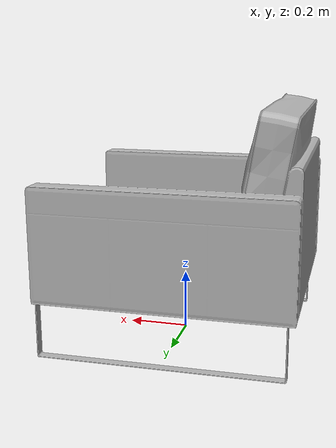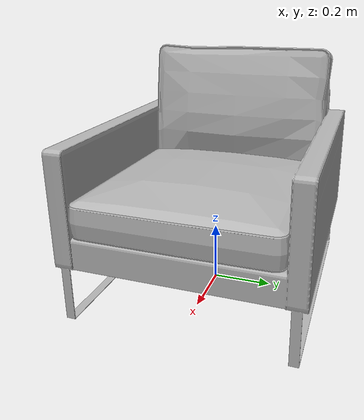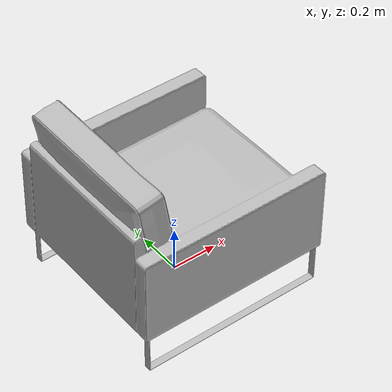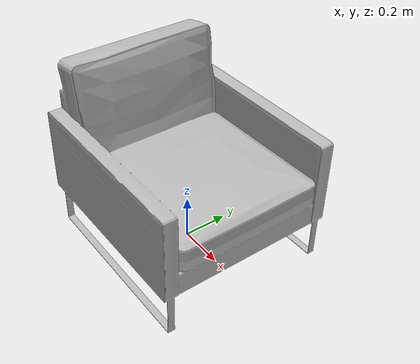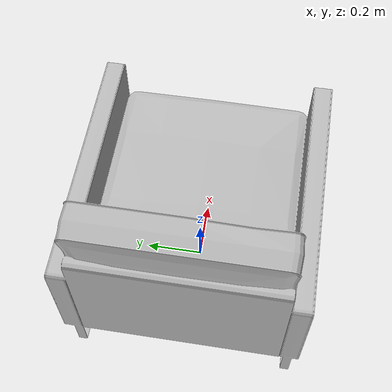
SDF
<?xml version='1.0'?>
<sdf version='1.4'>
  <model name='348'>
    <pose>0 0 0 0 0 0</pose>
    <static>true</static>
    <link name='link'>
      <collision name='collision'>
        <pose>0 0 0 0 0 0</pose>
        <geometry>
          <box>
            <size>0.85 0.77976 2</size>
          </box>
        </geometry>
      </collision>
      <visual name='visual'>
        <pose>0 0 0 0 0 0</pose>
        <geometry>
          <mesh><uri>model://348/348.dae</uri></mesh>
        </geometry>
      </visual>
    </link>
  </model>
</sdf>
